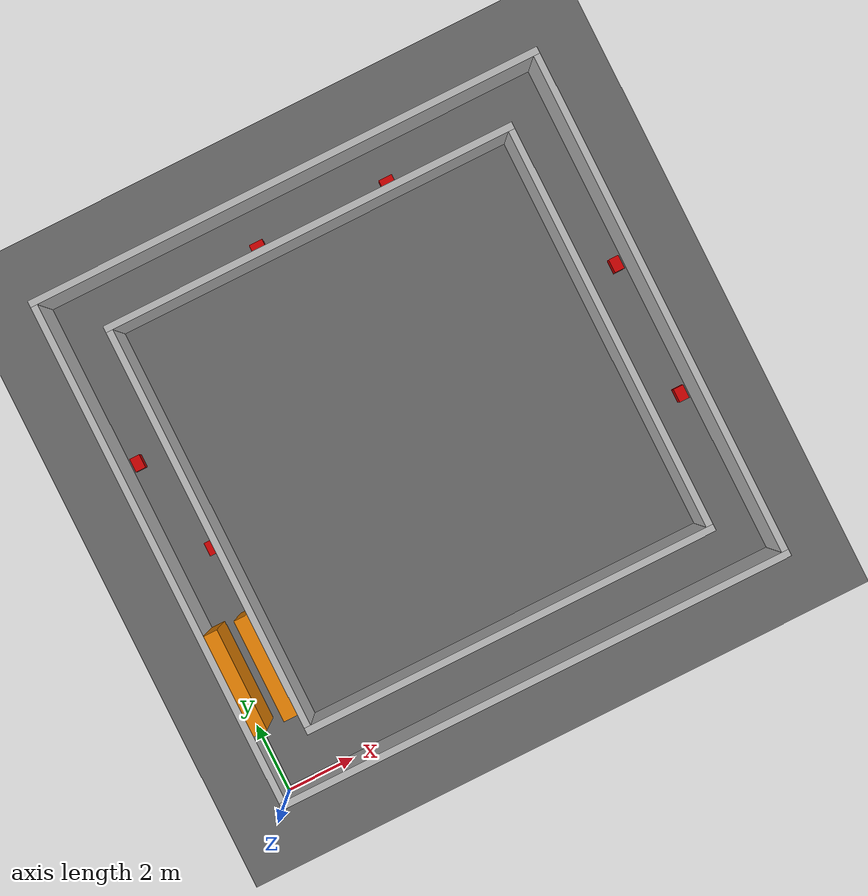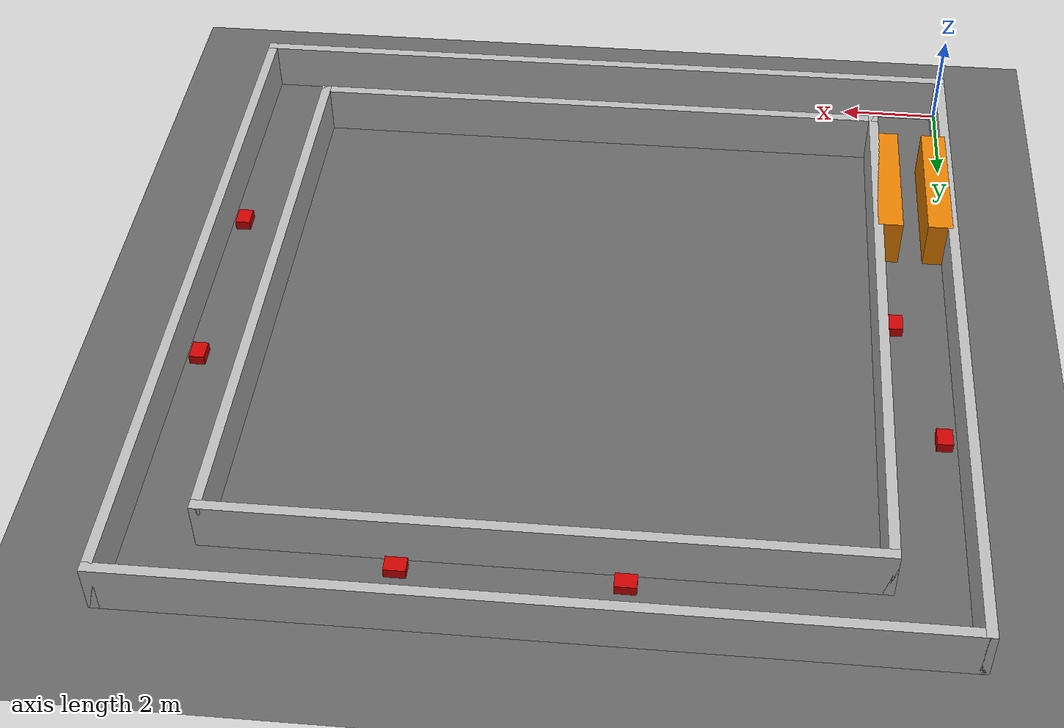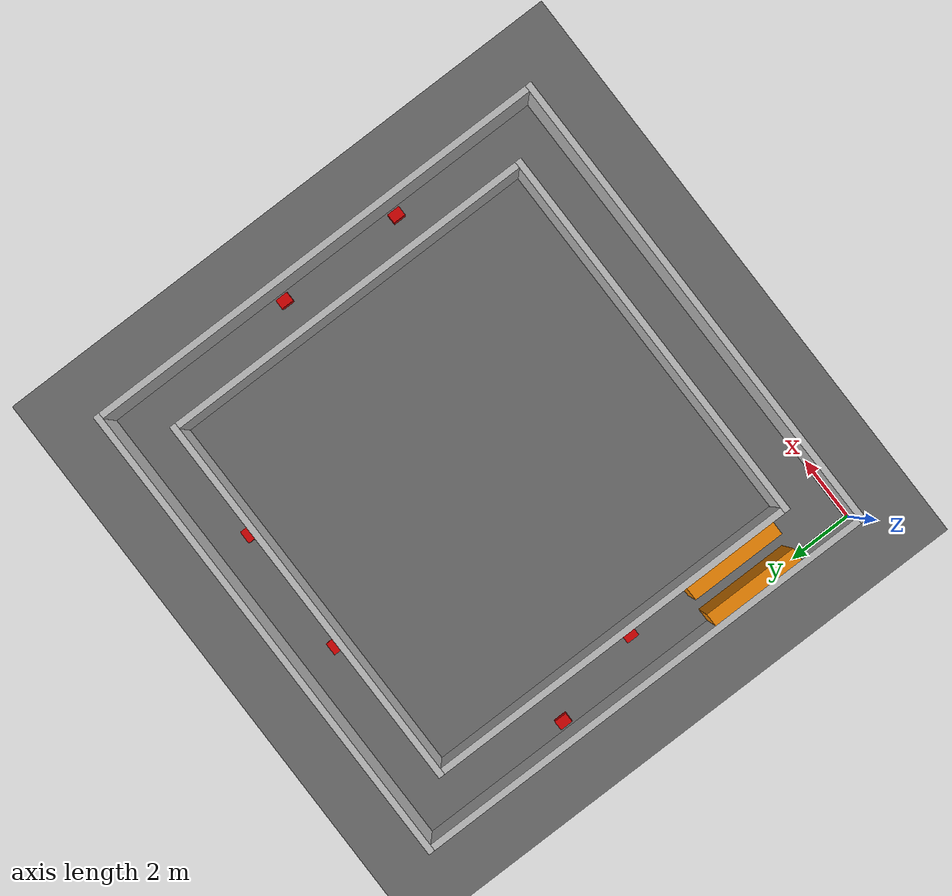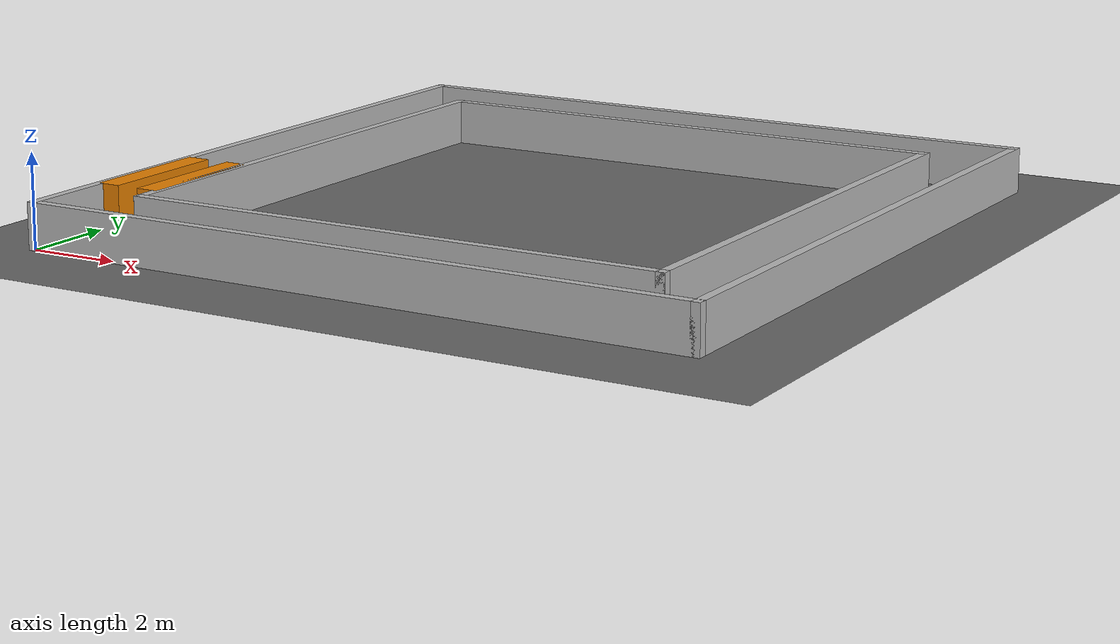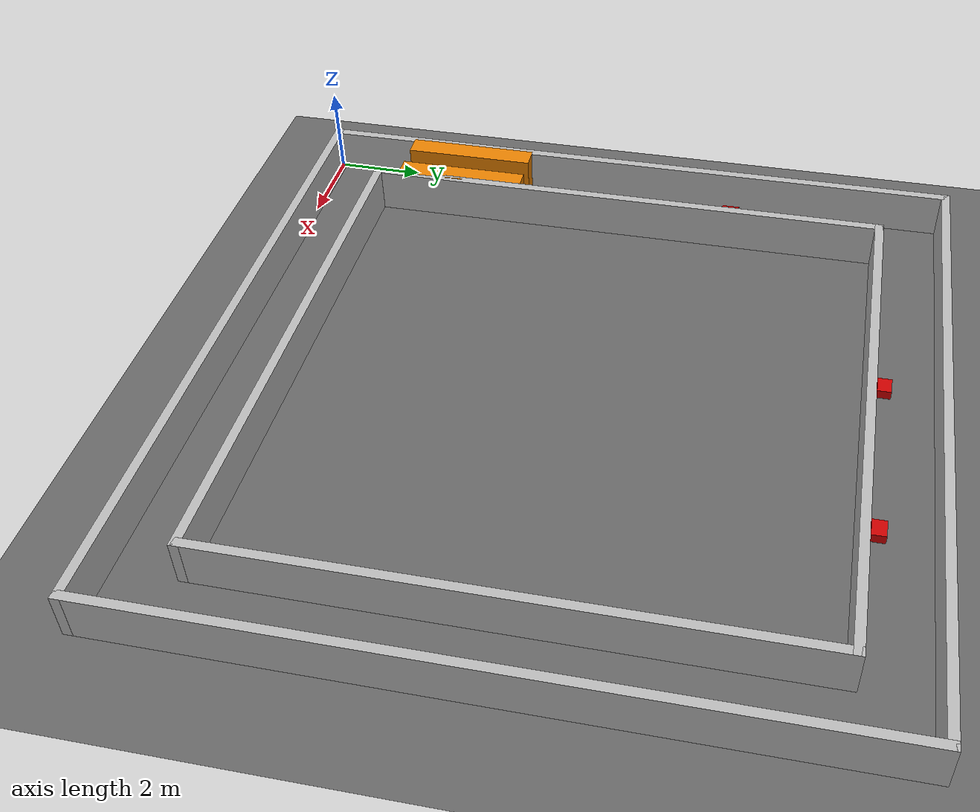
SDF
<?xml version="1.0" ?>
<sdf version="1.8">
  <world name="exam_track">
    <physics name="1ms" type="ignored">
      <max_step_size>0.001</max_step_size>
      <real_time_factor>1.0</real_time_factor>
    </physics>

    <light type="directional" name="sun">
      <cast_shadows>true</cast_shadows>
      <pose>0 0 10 0 0 0</pose>
      <diffuse>0.8 0.8 0.8 1</diffuse>
      <specular>0.2 0.2 0.2 1</specular>
      <direction>-0.5 0.1 -0.9</direction>
    </light>

    <model name="ground_plane">
      <static>true</static>
      <link name="link">
        <collision name="collision"><geometry><plane><normal>0 0 1</normal></plane></geometry></collision>
        <visual name="visual">
          <geometry><plane><normal>0 0 1</normal><size>50 50</size></plane></geometry>
          <material><ambient>0.4 0.4 0.4 1</ambient><diffuse>0.4 0.4 0.4 1</diffuse></material>
        </visual>
      </link>
    </model>

    <model name="outer_walls">
      <static>true</static>
      <link name="link">
        <visual name="v_s"><pose>7.5 0 0.5 0 0 0</pose><geometry><box><size>15.2 0.2 1</size></box></geometry></visual>
        <collision name="c_s"><pose>7.5 0 0.5 0 0 0</pose><geometry><box><size>15.2 0.2 1</size></box></geometry></collision>
        <visual name="v_n"><pose>7.5 15 0.5 0 0 0</pose><geometry><box><size>15.2 0.2 1</size></box></geometry></visual>
        <collision name="c_n"><pose>7.5 15 0.5 0 0 0</pose><geometry><box><size>15.2 0.2 1</size></box></geometry></collision>
        <visual name="v_w"><pose>0 7.5 0.5 0 0 1.57079</pose><geometry><box><size>15.2 0.2 1</size></box></geometry></visual>
        <collision name="c_w"><pose>0 7.5 0.5 0 0 1.57079</pose><geometry><box><size>15.2 0.2 1</size></box></geometry></collision>
        <visual name="v_e"><pose>15 7.5 0.5 0 0 1.57079</pose><geometry><box><size>15.2 0.2 1</size></box></geometry></visual>
        <collision name="c_e"><pose>15 7.5 0.5 0 0 1.57079</pose><geometry><box><size>15.2 0.2 1</size></box></geometry></collision>
      </link>
    </model>

    <model name="inner_walls">
      <static>true</static>
      <link name="link">
        <visual name="v_s_in"><pose>7.5 1.5 0.5 0 0 0</pose><geometry><box><size>12.2 0.2 1</size></box></geometry></visual>
        <collision name="c_s_in"><pose>7.5 1.5 0.5 0 0 0</pose><geometry><box><size>12.2 0.2 1</size></box></geometry></collision>
        <visual name="v_n_in"><pose>7.5 13.5 0.5 0 0 0</pose><geometry><box><size>12.2 0.2 1</size></box></geometry></visual>
        <collision name="c_n_in"><pose>7.5 13.5 0.5 0 0 0</pose><geometry><box><size>12.2 0.2 1</size></box></geometry></collision>
        <visual name="v_w_in"><pose>1.5 7.5 0.5 0 0 1.57079</pose><geometry><box><size>12.2 0.2 1</size></box></geometry></visual>
        <collision name="c_w_in"><pose>1.5 7.5 0.5 0 0 1.57079</pose><geometry><box><size>12.2 0.2 1</size></box></geometry></collision>
        <visual name="v_e_in"><pose>13.5 7.5 0.5 0 0 1.57079</pose><geometry><box><size>12.2 0.2 1</size></box></geometry></visual>
        <collision name="c_e_in"><pose>13.5 7.5 0.5 0 0 1.57079</pose><geometry><box><size>12.2 0.2 1</size></box></geometry></collision>
      </link>
    </model>

    <model name="car_east_right_1">
      <static>true</static>
      <pose>14.65 5 0.1 0 0 1.57079</pose>
      <link name="link">
        <collision name="c"><geometry><box><size>0.4 0.3 0.2</size></box></geometry></collision>
        <visual name="v"><geometry><box><size>0.4 0.3 0.2</size></box></geometry><material><ambient>0.8 0 0 1</ambient><diffuse>0.8 0 0 1</diffuse></material></visual>
      </link>
    </model>
    <model name="car_east_right_2">
      <static>true</static>
      <pose>14.65 9 0.1 0 0 1.57079</pose>
      <link name="link">
        <collision name="c"><geometry><box><size>0.4 0.3 0.2</size></box></geometry></collision>
        <visual name="v"><geometry><box><size>0.4 0.3 0.2</size></box></geometry><material><ambient>0.8 0 0 1</ambient><diffuse>0.8 0 0 1</diffuse></material></visual>
      </link>
    </model>

    <model name="car_north_left_1">
      <static>true</static>
      <pose>10 13.85 0.1 0 0 0</pose>
      <link name="link">
        <collision name="c"><geometry><box><size>0.4 0.3 0.2</size></box></geometry></collision>
        <visual name="v"><geometry><box><size>0.4 0.3 0.2</size></box></geometry><material><ambient>0.8 0 0 1</ambient><diffuse>0.8 0 0 1</diffuse></material></visual>
      </link>
    </model>
    <model name="car_north_left_2">
      <static>true</static>
      <pose>6 13.85 0.1 0 0 0</pose>
      <link name="link">
        <collision name="c"><geometry><box><size>0.4 0.3 0.2</size></box></geometry></collision>
        <visual name="v"><geometry><box><size>0.4 0.3 0.2</size></box></geometry><material><ambient>0.8 0 0 1</ambient><diffuse>0.8 0 0 1</diffuse></material></visual>
      </link>
    </model>

    <model name="car_west_right">
      <static>true</static>
      <pose>0.35 10 0.1 0 0 1.57079</pose>
      <link name="link">
        <collision name="c"><geometry><box><size>0.4 0.3 0.2</size></box></geometry></collision>
        <visual name="v"><geometry><box><size>0.4 0.3 0.2</size></box></geometry><material><ambient>0.8 0 0 1</ambient><diffuse>0.8 0 0 1</diffuse></material></visual>
      </link>
    </model>
    <model name="car_west_left">
      <static>true</static>
      <pose>1.15 7 0.1 0 0 1.57079</pose>
      <link name="link">
        <collision name="c"><geometry><box><size>0.4 0.3 0.2</size></box></geometry></collision>
        <visual name="v"><geometry><box><size>0.4 0.3 0.2</size></box></geometry><material><ambient>0.8 0 0 1</ambient><diffuse>0.8 0 0 1</diffuse></material></visual>
      </link>
    </model>

    <model name="bottleneck_right">
      <static>true</static>
      <pose>0.25 3.5 0.5 0 0 0</pose>
      <link name="link">
        <collision name="c"><geometry><box><size>0.5 3 1</size></box></geometry></collision>
        <visual name="v"><geometry><box><size>0.5 3 1</size></box></geometry><material><ambient>0.9 0.5 0 1</ambient><diffuse>0.9 0.5 0 1</diffuse></material></visual>
      </link>
    </model>
    <model name="bottleneck_left">
      <static>true</static>
      <pose>1.25 3.5 0.5 0 0 0</pose>
      <link name="link">
        <collision name="c"><geometry><box><size>0.5 3 1</size></box></geometry></collision>
        <visual name="v"><geometry><box><size>0.5 3 1</size></box></geometry><material><ambient>0.9 0.5 0 1</ambient><diffuse>0.9 0.5 0 1</diffuse></material></visual>
      </link>
    </model>

  </world>
</sdf>
